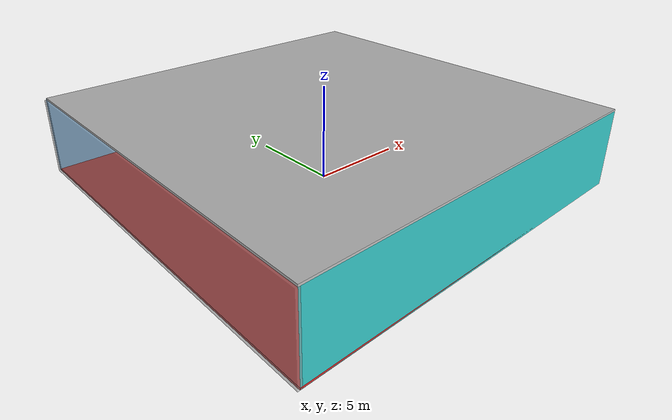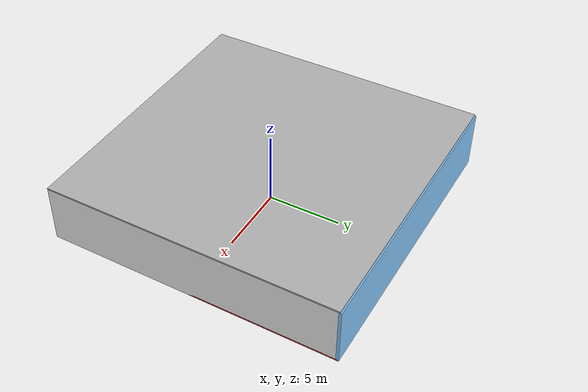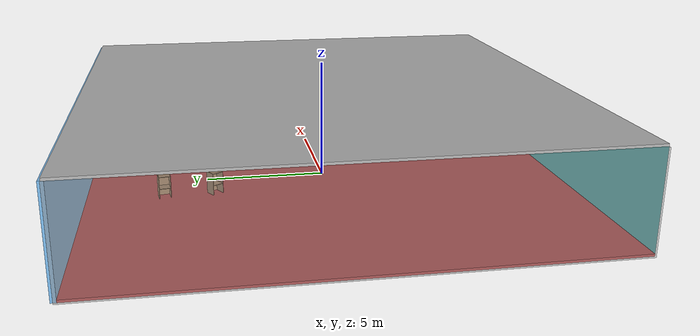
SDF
<sdf version="1.4">
 <world name="default">
  <physics type="ode">
   <max_step_size>0.001</max_step_size>
   <real_time_factor>1</real_time_factor>
   <real_time_update_rate>1000</real_time_update_rate>
   <gravity>0 0 -9.8</gravity>
  </physics>
  <scene><ambient>0.4 0.4 0.4 1</ambient><background>0.7 0.7 0.7 1</background><shadows>1</shadows></scene>
  <model name="Surrounding">
   <static>1</static>
   <link name="Ceiling">
    <collision name="Ceiling_Collision"><geometry><box><size>20 20 0.1</size></box></geometry></collision>
    <visual name="Ceiling_Visual">
     <geometry><box><size>20 20 0.1</size></box></geometry>
     <material>
      <script><uri>file://media/materials/scripts/gazebo.material</uri><name>Gazebo/LightOn</name></script>
     </material>
    </visual>
    <pose>0 0 4.05 0 0 0</pose>
   </link>
   <link name="Wall_South">
    <collision name="Wall_South_Collision">
     <geometry><box><size>20 0 4</size></box></geometry>
     <pose>0 0 2 0 -0 0</pose>
    </collision>
    <visual name="Wall_South_Visual">
     <pose>0 0 2 0 -0 0</pose>
     <geometry><box><size>20 0 4</size></box></geometry>
     <material>
      <script><uri>file://media/materials/scripts/gazebo.material</uri><name>Gazebo/TurquoiseGlow</name></script>
     </material>
    </visual>
    <velocity_decay><linear>0</linear><angular>0</angular></velocity_decay>
    <pose>0 -10 0 0 -0 0</pose>
   </link>
   <link name="Wall_East">
    <collision name="Wall_21_Collision">
     <geometry><box><size>20 0 4</size></box></geometry>
     <pose>0 0 2 0 -0 0</pose>
    </collision>
    <visual name="Wall_21_Visual">
     <pose>0 0 2 0 -0 0</pose>
     <geometry><box><size>20 0 4</size></box></geometry>
     <material>
      <script><uri>file://media/materials/scripts/gazebo.material</uri><name>Gazebo/WhiteGlow</name></script>
     </material>
    </visual>
    <velocity_decay><linear>0</linear><angular>0</angular></velocity_decay>
    <pose>10 0 0 0 -0 1.5708</pose>
   </link>
   <link name="Wall_North">
    <collision name="Wall_22_Collision">
     <geometry><box><size>20 0.2 4</size></box></geometry>
     <pose>0 0 2 0 -0 0</pose>
    </collision>
    <visual name="Wall_22_Visual">
     <pose>0 0 2 0 -0 0</pose>
     <geometry><box><size>20 0.2 4</size></box></geometry>
     <material>
      <script><uri>file://media/materials/scripts/gazebo.material</uri><name>Gazebo/SkyBlue</name></script>
     </material>
    </visual>
    <velocity_decay><linear>0</linear><angular>0</angular></velocity_decay>
    <pose>0 10 0 0 -0 0</pose>
   </link>
   <link name="Wall_West">
    <collision name="Wall_23_Collision">
     <geometry><box><size>20 0.2 4</size></box></geometry>
     <pose>0 0 2 0 -0 0</pose>
    </collision>
    <visual name="Wall_23_Visual">
     <pose>0 0 2 0 -0 0</pose>
     <geometry><box><size>20 0.2 4</size></box></geometry>
     <material>
      <script><uri>file://media/materials/scripts/gazebo.material</uri><name>Gazebo/GreyTransparent</name></script>
     </material>
    </visual>
    <velocity_decay><linear>0</linear><angular>0</angular></velocity_decay>
    <pose>-10 0 0 0 0 -1.5708</pose>
   </link>
   <link name="Ground_link">
    <collision name="collision">
     <pose>0 0 .05 0 -0 0</pose>
     <geometry><box><size>20 20 0.1</size></box></geometry>
    </collision>
    <visual name="visual">
     <pose>0 0 .05 0 -0 0</pose>
     <geometry><box><size>20 20 0.1</size></box></geometry>
     <material>
      <script><uri>file://media/materials/scripts/gazebo.material</uri><name>Gazebo/RedBright</name></script>
     </material>
    </visual>
   </link>
   <static>1</static>
  </model>
  <spherical_coordinates>
   <surface_model>EARTH_WGS84</surface_model>
   <latitude_deg>0</latitude_deg>
   <longitude_deg>0</longitude_deg>
   <elevation>0</elevation>
   <heading_deg>0</heading_deg>
  </spherical_coordinates>
  <light name="lightball_0" type="diffuse">
   <diffuse>0.8 0.8 0.8 1</diffuse>
   <specular>0.2 0.2 0.2 1</specular>
   <attenuation>
    <range>100</range>
    <constant>0.7</constant>
    <linear>0.01</linear>
    <quadratic>0.001</quadratic>
   </attenuation>
   <direction>-0.5 0.1 -0.9</direction>
   <pose>8.02340118406 -2.29377291976 0.634317952757 0 0 0</pose>
  </light>
  <light name="lightball_1" type="diffuse">
   <diffuse>0.8 0.8 0.8 1</diffuse>
   <specular>0.2 0.2 0.2 1</specular>
   <attenuation>
    <range>100</range>
    <constant>0.7</constant>
    <linear>0.01</linear>
    <quadratic>0.001</quadratic>
   </attenuation>
   <direction>-0.5 0.1 -0.9</direction>
   <pose>-3.55287010323 -4.20644636337 1.11403701787 0 0 0</pose>
  </light>
  <light name="lightball_2" type="diffuse">
   <diffuse>0.8 0.8 0.8 1</diffuse>
   <specular>0.2 0.2 0.2 1</specular>
   <attenuation>
    <range>100</range>
    <constant>0.7</constant>
    <linear>0.01</linear>
    <quadratic>0.001</quadratic>
   </attenuation>
   <direction>-0.5 0.1 -0.9</direction>
   <pose>8.59449600809 9.92170052469 1.79688898097 0 0 0</pose>
  </light>
  <light name="lightball_3" type="diffuse">
   <diffuse>0.8 0.8 0.8 1</diffuse>
   <specular>0.2 0.2 0.2 1</specular>
   <attenuation>
    <range>100</range>
    <constant>0.7</constant>
    <linear>0.01</linear>
    <quadratic>0.001</quadratic>
   </attenuation>
   <direction>-0.5 0.1 -0.9</direction>
   <pose>4.35433675922 -8.19857670283 2.95307646434 0 0 0</pose>
  </light>
  <light name="lightball_4" type="diffuse">
   <diffuse>0.8 0.8 0.8 1</diffuse>
   <specular>0.2 0.2 0.2 1</specular>
   <attenuation>
    <range>100</range>
    <constant>0.7</constant>
    <linear>0.01</linear>
    <quadratic>0.001</quadratic>
   </attenuation>
   <direction>-0.5 0.1 -0.9</direction>
   <pose>-0.744518458486 -7.51996009613 3.29481635464 0 0 0</pose>
  </light>
  <light name="lightball_5" type="diffuse">
   <diffuse>0.8 0.8 0.8 1</diffuse>
   <specular>0.2 0.2 0.2 1</specular>
   <attenuation>
    <range>100</range>
    <constant>0.7</constant>
    <linear>0.01</linear>
    <quadratic>0.001</quadratic>
   </attenuation>
   <direction>-0.5 0.1 -0.9</direction>
   <pose>5.13323058662 7.6999590206 1.46213180637 0 0 0</pose>
  </light>
  <light name="lightball_6" type="diffuse">
   <diffuse>0.8 0.8 0.8 1</diffuse>
   <specular>0.2 0.2 0.2 1</specular>
   <attenuation>
    <range>100</range>
    <constant>0.7</constant>
    <linear>0.01</linear>
    <quadratic>0.001</quadratic>
   </attenuation>
   <direction>-0.5 0.1 -0.9</direction>
   <pose>-3.58574770011 9.44083660008 2.45097613691 0 0 0</pose>
  </light>
  <light name="lightball_7" type="diffuse">
   <diffuse>0.8 0.8 0.8 1</diffuse>
   <specular>0.2 0.2 0.2 1</specular>
   <attenuation>
    <range>100</range>
    <constant>0.7</constant>
    <linear>0.01</linear>
    <quadratic>0.001</quadratic>
   </attenuation>
   <direction>-0.5 0.1 -0.9</direction>
   <pose>9.05105899578 -8.57409764797 3.31279635106 0 0 0</pose>
  </light>
  <light name="lightball_8" type="diffuse">
   <diffuse>0.8 0.8 0.8 1</diffuse>
   <specular>0.2 0.2 0.2 1</specular>
   <attenuation>
    <range>100</range>
    <constant>0.7</constant>
    <linear>0.01</linear>
    <quadratic>0.001</quadratic>
   </attenuation>
   <direction>-0.5 0.1 -0.9</direction>
   <pose>-8.34966066605 -0.444098167126 2.78344484735 0 0 0</pose>
  </light>
  <light name="lightball_9" type="diffuse">
   <diffuse>0.8 0.8 0.8 1</diffuse>
   <specular>0.2 0.2 0.2 1</specular>
   <attenuation>
    <range>100</range>
    <constant>0.7</constant>
    <linear>0.01</linear>
    <quadratic>0.001</quadratic>
   </attenuation>
   <direction>-0.5 0.1 -0.9</direction>
   <pose>-1.06825010229 -6.98290582293 2.6589074592 0 0 0</pose>
  </light>
  <include><uri>model://cabinet</uri><pose>-1.77274228741 4.73461578345 0 0 0 0.555726245787</pose></include>
  <include><uri>model://cabinet</uri><pose>-1.880777565 6.78617703386 0 0 0 0.156398497416</pose></include>
  <include>
   <uri>model://textured_shapes</uri>
   <pose>5.35522312978 -6.76877806108 0 0 0 0.136517298906</pose>
  </include>
  <include><uri>model://cabinet</uri><pose>6.46667594612 4.93429720175 0 0 0 0.710888497505</pose></include>
  <include>
   <uri>model://construction_cone</uri>
   <pose>7.51006179673 7.75268944506 0 0 0 2.68166135311</pose>
  </include>
 </world>
</sdf>

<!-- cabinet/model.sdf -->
<sdf version="1.5">
  <model name="cabinet">
    <static>true</static>
    <link name="cabinet_bottom_plate">
      <inertial>
        <pose>0 0 -1 0 0 0</pose>
        <inertia>
          <ixx>2.050000</ixx>
          <ixy>0</ixy>
          <ixz>0</ixz>
          <iyy>2.050000</iyy>
          <iyz>0</iyz>
          <izz>2.050000</izz>
        </inertia>
        <mass>25.000000</mass>
      </inertial>
      <collision name="cabinet_bottom_plate_geom">
        <pose>0 0 0.010000 0 0 0</pose>
        <geometry>
          <box>
            <size>0.450000 0.450000 0.020000</size>
          </box>
        </geometry>
      </collision>
      <visual name="cabinet_bottom_plate_geom_visual">
        <pose>0 0 0.010000 0 0 0</pose>
        <geometry>
          <box>
            <size>0.450000 0.450000 0.020000</size>
          </box>
        </geometry>
        <material>
          <script>
            <uri>model://media/materials/scripts/gazebo.material</uri>
            <name>Gazebo/Wood</name>
          </script>
        </material>
      </visual>
      <collision name="cabinet_bottom_plate_geom_cabinet_back_plate">
        <pose>0.235000 0 0.510000 0 0 0</pose>
        <geometry>
          <box>
            <size>0.020000 0.450000 1.020000</size>
          </box>
        </geometry>
      </collision>
      <visual name="cabinet_bottom_plate_geom_cabinet_back_plate_visual">
        <pose>0.235000 0 0.510000 0 0 0</pose>
        <geometry>
          <box>
            <size>0.020000 0.450000 1.020000</size>
          </box>
        </geometry>
        <material>
          <script>
            <uri>model://media/materials/scripts/gazebo.material</uri>
            <name>Gazebo/Wood</name>
          </script>
        </material>
      </visual>
      <collision name="cabinet_bottom_plate_geom_cabinet_left_plate">
        <pose>0 0.235000 0.510000 0 0 0</pose>
        <geometry>
          <box>
            <size>0.450000 0.020000 1.020000</size>
          </box>
        </geometry>
      </collision>
      <visual name="cabinet_bottom_plate_geom_cabinet_left_plate_visual">
        <pose>0 0.235000 0.510000 0 0 0</pose>
        <geometry>
          <box>
            <size>0.450000 0.020000 1.020000</size>
          </box>
        </geometry>
        <material>
          <script>
            <uri>model://media/materials/scripts/gazebo.material</uri>
            <name>Gazebo/Wood</name>
          </script>
        </material>
      </visual>
      <collision name="cabinet_bottom_plate_geom_cabinet_middle_plate">
        <pose>0 0 0.510000 0 0 0</pose>
        <geometry>
          <box>
            <size>0.450000 0.450000 0.020000</size>
          </box>
        </geometry>
      </collision>
      <visual name="cabinet_bottom_plate_geom_cabinet_middle_plate_visual">
        <pose>0 0 0.510000 0 0 0</pose>
        <geometry>
          <box>
            <size>0.450000 0.450000 0.020000</size>
          </box>
        </geometry>
        <material>
          <script>
            <uri>model://media/materials/scripts/gazebo.material</uri>
            <name>Gazebo/Wood</name>
          </script>
        </material>
      </visual>
      <collision name="cabinet_bottom_plate_geom_cabinet_right_plate">
        <pose>0 -0.235000 0.510000 0 0 0</pose>
        <geometry>
          <box>
            <size>0.450000 0.020000 1.020000</size>
          </box>
        </geometry>
      </collision>
      <visual name="cabinet_bottom_plate_geom_cabinet_right_plate_visual">
        <pose>0 -0.235000 0.510000 0 0 0</pose>
        <geometry>
          <box>
            <size>0.450000 0.020000 1.020000</size>
          </box>
        </geometry>
        <material>
          <script>
            <uri>model://media/materials/scripts/gazebo.material</uri>
            <name>Gazebo/Wood</name>
          </script>
        </material>
      </visual>
      <collision name="cabinet_bottom_plate_geom_cabinet_top_plate">
        <pose>0 0 1.010000 0 0 0</pose>
        <geometry>
          <box>
            <size>0.450000 0.450000 0.020000</size>
          </box>
        </geometry>
      </collision>
      <visual name="cabinet_bottom_plate_geom_cabinet_top_plate_visual">
        <pose>0 0 1.010000 0 0 0</pose>
        <geometry>
          <box>
            <size>0.450000 0.450000 0.020000</size>
          </box>
        </geometry>
        <material>
          <script>
            <uri>model://media/materials/scripts/gazebo.material</uri>
            <name>Gazebo/Wood</name>
          </script>
        </material>
      </visual>
    </link>
  </model>
</sdf>

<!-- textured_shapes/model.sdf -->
<sdf version="1.6">
  <model name="textured_shapes">
    <pose>0 0 0.5 0 0 0</pose>
    <link name="box">
      <pose>0 -1.5 0 0 0 0</pose>
      <collision name="collision">
        <geometry>
          <box>
            <size>1 1 1</size>
          </box>
        </geometry>
      </collision>
      <visual name="visual">
        <geometry>
          <box>
            <size>1 1 1</size>
          </box>
        </geometry>
        <material>
          <script>
            <uri>model://../model_source/models/textured_shapes/materials/scripts</uri>
            <uri>model://../model_source/models/textured_shapes/materials/textures</uri>
            <name>TexturedShape/Squares</name>
          </script>
        </material>
      </visual>
    </link>
    <link name="sphere">
      <collision name="collision">
        <geometry>
          <sphere>
            <radius>0.5</radius>
          </sphere>
        </geometry>
      </collision>
      <visual name="visual">
        <geometry>
          <sphere>
            <radius>0.5</radius>
          </sphere>
        </geometry>
        <material>
          <script>
            <uri>model://../model_source/models/textured_shapes/materials/scripts</uri>
            <uri>model://../model_source/models/textured_shapes/materials/textures</uri>
            <name>TexturedShape/Squares</name>
          </script>
        </material>
      </visual>
    </link>
    <link name="cylinder">
      <pose>0 1.5 0 0 0 0</pose>
      <collision name="collision">
        <geometry>
          <cylinder>
            <radius>0.5</radius>
            <length>1</length>
          </cylinder>
        </geometry>
      </collision>
      <visual name="visual">
        <geometry>
          <cylinder>
            <radius>0.5</radius>
            <length>1</length>
          </cylinder>
        </geometry>
        <material>
          <script>
            <uri>model://../model_source/models/textured_shapes/materials/scripts</uri>
            <uri>model://../model_source/models/textured_shapes/materials/textures</uri>
            <name>TexturedShape/Squares</name>
          </script>
        </material>
      </visual>
    </link>
  </model>
</sdf>

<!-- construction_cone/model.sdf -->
<sdf version="1.5">
  <model name="Construction Cone">
    <link name="link">
      <collision name="collision">
        <geometry>
          <mesh>
            <scale>10 10 10</scale>
            <uri>file://isr-testbed/construction_cone/meshes/construction_cone.dae</uri>
          </mesh>
        </geometry>
      </collision>
      <visual name="visual">
        <geometry>
          <mesh>
            <scale>10 10 10</scale>
            <uri>file://isr-testbed/construction_cone/meshes/construction_cone.dae</uri>
          </mesh>
        </geometry>
      </visual>
    </link>
  </model>
</sdf>
